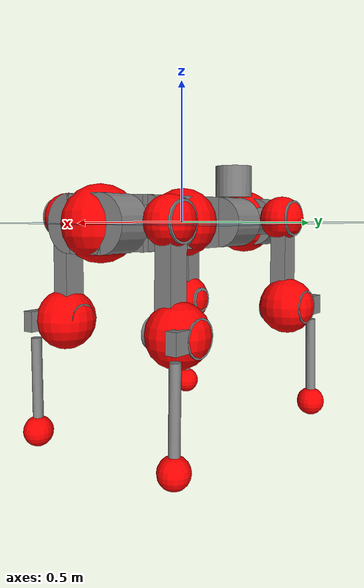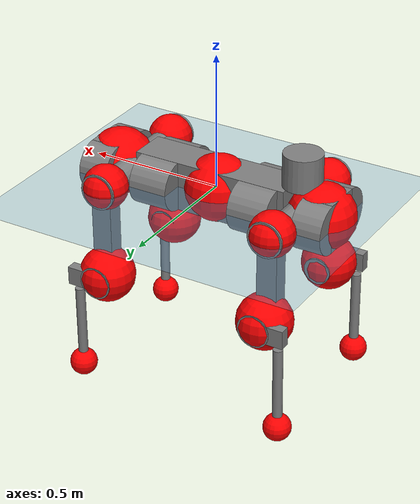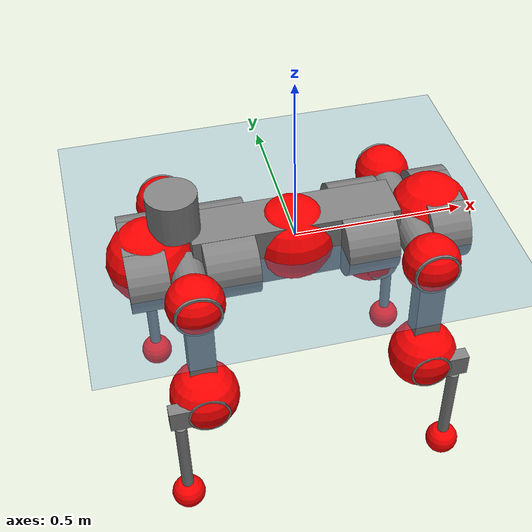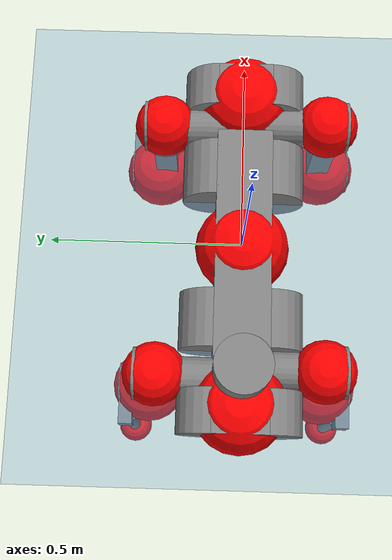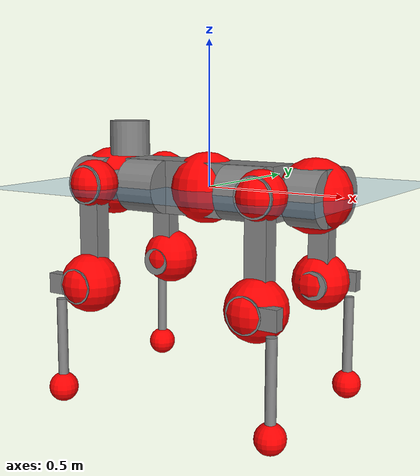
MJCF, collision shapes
<mujoco model="anymal_c">
  <compiler angle="radian" assetdir="assets" balanceinertia="true" inertiafromgeom="false"/>

  <option timestep="0.005" density="1.2" viscosity="2e-05"/>

  <size nkey="1"/>

  <visual>
    <quality shadowsize="8192"/>
    <map shadowclip="0.5"/>
  </visual>

  <default>
    <default class="/">
      <material specular="0" shininess="0.25"/>
      <geom contype="0" conaffinity="0" group="1" solref="-1000 -80"/>
      <site size="0.01 0.005 0.005" group="5"/>
      <general forcelimited="true" forcerange="-80 80" biastype="affine" gainprm="80" biasprm="0 -80 -2"/>
      <default class="anymal_c">
        <joint armature="0.01" damping="0.01" frictionloss="0.1"/>
        <default class="visual">
          <geom type="mesh" group="2"/>
          <default class="visual_zflip"/>
        </default>
        <default class="collision">
          <geom type="cylinder" group="3"/>
          <default class="foot">
            <geom size="0.03 0 0" type="sphere" condim="6" priority="1" friction="0.8 0.02 0.01" solimp="0.015 1 0.03"/>
          </default>
        </default>
      </default>
      <default class="reward_collision_sphere">
        <geom group="5" rgba="1 0 0 1"/>
      </default>
    </default>
  </default>

  <asset>
    <texture type="skybox" colorspace="auto" name="//unnamed_texture_0" builtin="gradient" rgb1="0.95 0.95 0.95" rgb2="0.95 0.95 0.95" width="100" height="600"/>
    <texture type="2d" colorspace="auto" name="texplane" builtin="checker" rgb1="0.345 0.575 0.748" rgb2="0.345 0.575 0.748" markrgb="1 1 1" width="512" height="512"/>
    <texture type="2d" colorspace="linear" name="base" file="base.png"/>
    <texture type="2d" colorspace="linear" name="top_shell" file="top_shell.png"/>
    <texture type="2d" colorspace="linear" name="bottom_shell" file="bottom_shell.png"/>
    <texture type="2d" colorspace="linear" name="remote" file="remote.png"/>
    <texture type="2d" colorspace="linear" name="hatch" file="hatch.png"/>
    <texture type="2d" colorspace="linear" name="handle" file="handle.png"/>
    <texture type="2d" colorspace="linear" name="face" file="face.png"/>
    <texture type="2d" colorspace="linear" name="battery" file="battery.png"/>
    <texture type="2d" colorspace="linear" name="lidar_cage" file="lidar_cage.png"/>
    <texture type="2d" colorspace="linear" name="depth_camera" file="depth_camera.png"/>
    <texture type="2d" colorspace="linear" name="wide_angle_camera" file="wide_angle_camera.png"/>
    <texture type="2d" colorspace="linear" name="lidar" file="lidar.png"/>
    <texture type="2d" colorspace="linear" name="drive" file="drive.png"/>
    <texture type="2d" colorspace="linear" name="hip_l" file="hip_l.png"/>
    <texture type="2d" colorspace="linear" name="shank_l" file="shank_l.png"/>
    <texture type="2d" colorspace="linear" name="foot" file="foot.png"/>
    <texture type="2d" colorspace="linear" name="thigh" file="thigh.png"/>
    <texture type="2d" colorspace="linear" name="shank_r" file="shank_r.png"/>
    <texture type="2d" colorspace="linear" name="hip_r" file="hip_r.png"/>
    <material name="MatPlane" class="/" texture="texplane" texuniform="true" texrepeat="2 2" specular="0.9" shininess="0.5"/>
    <material name="black_plastic" class="/" rgba="0.007 0.007 0.007 1"/>
    <material name="green" class="/" rgba="0.052 0.178 0.033 1"/>
    <material name="red" class="/" rgba="0.178 0.006 0.005 1"/>
    <material name="yellow" class="/" rgba="0.178 0.119 0.006 1"/>
    <material name="lwl" class="/" rgba="0.8 0.8 0.8 1"/>
    <material name="base" class="/" texture="base"/>
    <material name="top_shell" class="/" texture="top_shell"/>
    <material name="bottom_shell" class="/" texture="bottom_shell"/>
    <material name="hip_l" class="/" texture="hip_l"/>
    <material name="thigh" class="/" texture="thigh"/>
    <material name="shank_l" class="/" texture="shank_l"/>
    <material name="foot" class="/" texture="foot"/>
    <material name="hip_r" class="/" texture="hip_r"/>
    <material name="shank" class="/" texture="shank_r"/>
    <material name="hatch" class="/" texture="hatch"/>
    <material name="remote" class="/" texture="remote"/>
    <material name="handle" class="/" texture="handle"/>
    <material name="face" class="/" texture="face"/>
    <material name="depth_camera" class="/" texture="depth_camera"/>
    <material name="wide_angle_camera" class="/" texture="wide_angle_camera"/>
    <material name="battery" class="/" texture="battery"/>
    <material name="lidar_cage" class="/" texture="lidar_cage"/>
    <material name="lidar" class="/" texture="lidar"/>
    <material name="drive" class="/" texture="drive"/>
    <mesh name="base_0" class="/" file="base_0.obj"/>
    <mesh name="base_1" class="/" file="base_1.obj"/>
    <mesh name="base_2" class="/" file="base_2.obj"/>
    <mesh name="base_3" class="/" file="base_3.obj"/>
    <mesh name="base_4" class="/" file="base_4.obj"/>
    <mesh name="base_5" class="/" file="base_5.obj"/>
    <mesh name="top_shell" class="/" file="top_shell.obj"/>
    <mesh name="bottom_shell" class="/" file="bottom_shell.obj"/>
    <mesh name="remote" class="/" file="remote.obj"/>
    <mesh name="handle" class="/" file="handle.obj"/>
    <mesh name="face" class="/" file="face.obj"/>
    <mesh name="wide_angle_camera" class="/" file="wide_angle_camera.obj"/>
    <mesh name="depth_camera" class="/" file="depth_camera.obj"/>
    <mesh name="battery" class="/" file="battery.obj"/>
    <mesh name="lidar_cage" class="/" file="lidar_cage.obj"/>
    <mesh name="lidar" class="/" file="lidar.obj"/>
    <mesh name="drive" class="/" file="drive.obj"/>
    <mesh name="hip_l" class="/" file="hip_l.obj"/>
    <mesh name="thigh" class="/" file="thigh.obj"/>
    <mesh name="shank_l" class="/" file="shank_l.obj"/>
    <mesh name="foot" class="/" file="foot.obj"/>
    <mesh name="hip_r" class="/" file="hip_r.obj"/>
    <mesh name="hatch" class="/" file="hatch.obj"/>
    <mesh name="shank_r" class="/" file="shank_r.obj"/>
  </asset>

  <worldbody>
    <geom name="floor" class="/" size="100 100 0.125" type="plane" group="0" material="MatPlane"/>
    <light name="toplight_shadow" class="/" pos="0 0 5" dir="0.0990148 0.0990148 -0.990148" type="directional" ambient="0.04 0.04 0.04" diffuse="0.55 0.55 0.55" specular="0.12 0.12 0.12"/>
    <light name="toplight_fill" class="/" pos="0 0 5" dir="0.0990148 0.0990148 -0.990148" type="directional" castshadow="false" ambient="0.04 0.04 0.04" diffuse="0.3 0.3 0.3" specular="0.08 0.08 0.08"/>
    <body name="trunk" childclass="anymal_c" pos="-0.00871687 -0.00217857 -0.00163347" quat="1 0.000115098 -2.18662e-06 -9.59306e-05">
      <inertial pos="0.00150966 -0.00214916 0.057456" quat="0.508429 0.510054 0.486515 0.494618" mass="21.0856" diaginertia="0.32906 0.446684 0.525962"/>
      <joint name="//unnamed_joint_0" type="free" armature="0" damping="0" frictionloss="0"/>
      <geom name="//unnamed_geom_1" class="visual" material="green" mesh="base_0"/>
      <geom name="//unnamed_geom_2" class="visual" material="yellow" mesh="base_1"/>
      <geom name="//unnamed_geom_3" class="visual" material="red" mesh="base_2"/>
      <geom name="//unnamed_geom_4" class="visual" material="black_plastic" mesh="base_3"/>
      <geom name="//unnamed_geom_5" class="visual" material="lwl" mesh="base_4"/>
      <geom name="//unnamed_geom_6" class="visual" material="base" mesh="base_5"/>
      <geom name="trunk_1" class="collision" size="0.297733 0.0718666 0.0923999" type="box"/>
      <geom name="trunk_2" class="collision" size="0.0923999 0.0744333" pos="0.198901 0.0676857 0" quat="0.707107 0 0.707107 0"/>
      <geom name="trunk_3" class="collision" size="0.0923999 0.0744333" pos="-0.198901 0.0676857 0" quat="0.707107 0 0.707107 0"/>
      <geom name="trunk_4" class="collision" size="0.0923999 0.0744333" pos="0.198901 -0.0676857 0" quat="0.707107 0 0.707107 0"/>
      <geom name="trunk_5" class="collision" size="0.0923999 0.0744333" pos="-0.198901 -0.0676857 0" quat="0.707107 0 0.707107 0"/>
      <geom name="//unnamed_geom_12" class="visual" material="top_shell" mesh="top_shell"/>
      <geom name="//unnamed_geom_13" class="visual" material="bottom_shell" mesh="bottom_shell"/>
      <geom name="//unnamed_geom_14" class="visual" material="remote" mesh="remote"/>
      <geom name="//unnamed_geom_15" class="visual" material="handle" mesh="handle"/>
      <geom name="//unnamed_geom_16" class="visual" pos="0.379056 0 0" quat="1 0 0 0" material="face" mesh="face"/>
      <geom name="trunk_6" class="collision" size="0.0564666 0.0718666 0.0923999" pos="0.429353 0 0" type="box"/>
      <geom name="//unnamed_geom_18" class="collision" size="0.0923999 0.0564666" pos="0.429353 0.0676857 0" quat="0.707107 0 0.707107 0"/>
      <geom name="//unnamed_geom_19" class="collision" size="0.0923999 0.0564666" pos="0.429353 -0.0676857 0" quat="0.707107 0 0.707107 0"/>
      <geom name="//unnamed_geom_20" class="visual" pos="0.422186 0 -0.0371573" quat="0.965926 0 0.258819 0" material="depth_camera" mesh="depth_camera"/>
      <geom name="//unnamed_geom_21" class="visual" pos="0.469133 0 0.0179426" material="wide_angle_camera" mesh="wide_angle_camera"/>
      <geom name="//unnamed_geom_22" class="visual_zflip" pos="-0.379056 0 0" quat="0 0 0 1" material="face" mesh="face"/>
      <geom name="trunk_7" class="collision" size="0.0564666 0.0718666 0.0923999" pos="-0.429353 0 0" quat="0 0 0 1" type="box"/>
      <geom name="//unnamed_geom_24" class="collision" size="0.0923999 0.0564666" pos="-0.429353 -0.0676857 0" quat="0 -0.707107 0 0.707107"/>
      <geom name="//unnamed_geom_25" class="collision" size="0.0923999 0.0564666" pos="-0.429353 0.0676857 0" quat="0 -0.707107 0 0.707107"/>
      <geom name="//unnamed_geom_26" class="visual" pos="-0.422186 0 -0.0371573" quat="0 -0.258819 0 0.965926" material="depth_camera" mesh="depth_camera"/>
      <geom name="//unnamed_geom_27" class="visual_zflip" pos="-0.469133 0 0.0179426" quat="0 0 0 1" material="wide_angle_camera" mesh="wide_angle_camera"/>
      <geom name="//unnamed_geom_28" class="visual" material="battery" mesh="battery"/>
      <geom name="//unnamed_geom_29" class="visual" pos="0 0.0746321 0.0326594" quat="0.683013 -0.183013 0.183013 0.683013" material="depth_camera" mesh="depth_camera"/>
      <geom name="//unnamed_geom_30" class="visual" pos="0 -0.0746321 0.0326594" quat="0.683013 0.183013 0.183013 -0.683013" material="depth_camera" mesh="depth_camera"/>
      <geom name="//unnamed_geom_31" class="visual" pos="-0.332874 0 0.0880949" quat="1 0 0 0" material="lidar_cage" mesh="lidar_cage"/>
      <geom name="trunk_8" class="collision" size="0.0718666 0.0615999" pos="-0.332874 0 0.160009"/>
      <geom name="//unnamed_geom_33" class="visual" pos="-0.332874 2.06057e-05 0.170437" quat="0.707107 0 0 -0.707107" material="lidar" mesh="lidar"/>
      <geom name="//unnamed_geom_34" class="visual" pos="0.274255 0.100644 -3.99568e-09" quat="0.258819 0.965926 0 0" material="drive" mesh="drive"/>
      <geom name="//unnamed_geom_35" class="visual" pos="0.274255 -0.100644 3.99568e-09" quat="0.258819 -0.965926 0 0" material="drive" mesh="drive"/>
      <geom name="//unnamed_geom_36" class="visual" pos="-0.274255 0.100644 3.99568e-09" quat="0 0 0.965926 -0.258819" material="drive" mesh="drive"/>
      <geom name="//unnamed_geom_37" class="visual" pos="-0.274255 -0.100644 -3.99568e-09" quat="0 0 -0.965926 -0.258819" material="drive" mesh="drive"/>
      <geom name="//unnamed_geom_38" class="visual" pos="0.106081 0 0.0874956" quat="1 0 0 0" material="hatch" mesh="hatch"/>
      <geom name="//unnamed_geom_39" class="reward_collision_sphere" size="0.1232"/>
      <geom name="//unnamed_geom_40" class="reward_collision_sphere" size="0.1232" pos="0.41152 0 0"/>
      <geom name="//unnamed_geom_41" class="reward_collision_sphere" size="0.1232" pos="-0.41152 0 0"/>
      <site name="imu" pos="0.223988 0.00310856 0.106524" size="0.0102667"/>
      <camera name="track" pos="0 -1.93388 0" quat="0.707107 0.707107 0 0" mode="trackcom"/>
      <camera name="ego_camera" pos="0.41152 0 -0.0479428" quat="-0.5 -0.5 0.5 0.5"/>
      <body name="LF_HIP" pos="0.276623 0.103715 0.00427357" quat="0.261789 0.965122 0.00212698 0.00120038">
        <inertial pos="0.0614599 -0.0123794 -0.0110693" quat="-0.125107 0.712295 -0.132601 0.677791" mass="2.94081" diaginertia="0.00365608 0.0043782 0.00784152"/>
        <joint name="LF_HAA" pos="0 0 0" axis="0.998331 0.0553103 -0.0165982" stiffness="0.0437557" range="-0.752735 0.499711" armature="0.0152353" damping="0.0110109" frictionloss="0.0853594"/>
        <geom name="//unnamed_geom_42" class="visual" pos="0 -0.000235048 3.86064e-05" quat="0.258819 -0.965926 0 0" material="hip_l" mesh="hip_l"/>
        <geom name="//unnamed_geom_43" class="visual" pos="0.0547779 -0.0671479 -0.0404811" quat="0.183013 -0.683013 0.683013 0.183013" material="drive" mesh="drive"/>
        <geom name="//unnamed_geom_44" class="collision" size="0.0513333 0.0718666" pos="0.0547779 -0.0115644 -0.00827613" quat="-0.353553 -0.612372 0.612372 -0.353553"/>
        <body name="LF_THIGH" pos="0.0599699 -0.0722903 -0.0459515" quat="0.181877 -0.683305 0.683204 0.182338">
          <inertial pos="0.0268462 -0.000288998 -0.283756" quat="0.992864 0.00895932 -0.0868735 0.0811963" mass="3.46145" diaginertia="0.0201539 0.0257885 0.0103247"/>
          <joint name="LF_HFE" pos="0 0 0" axis="0.99982 0.0187128 0.00310458" stiffness="0.0243115" range="-3.19271 3.14257" armature="0.00597657" damping="0.0275549" frictionloss="0.125194"/>
          <geom name="//unnamed_geom_45" class="visual" pos="-0.00104352 -1.64435e-06 0" quat="0.707107 0 0 -0.707107" material="thigh" mesh="thigh"/>
          <geom name="//unnamed_geom_46" class="collision" size="0.0667333 0.0410666" pos="0.0365796 0 0" quat="0.5 0.5 -0.5 -0.5"/>
          <geom name="//unnamed_geom_47" class="collision" size="0.0385 0.0308 0.145082" pos="0.0274347 0 -0.169375" quat="0.707107 0 0 -0.707107" type="box"/>
          <geom name="//unnamed_geom_48" class="visual" pos="0.0917233 0 -0.341592" quat="1 0 0 0" material="drive" mesh="drive"/>
          <geom name="//unnamed_geom_49" class="collision" size="0.0513333 0.0718666" pos="0.027709 0 -0.341592" quat="0.707107 0 0.707107 0"/>
          <geom name="//unnamed_geom_50" class="reward_collision_sphere" size="0.0821333" pos="0.0228622 0 0"/>
          <body name="LF_SHANK" pos="0.0941054 0.011057 -0.340997" quat="0.999995 -0.000503987 0.00221078 -0.00204758">
            <inertial pos="0.0017584 -0.0590419 -0.0970701" quat="0.990982 -0.112267 -0.00739101 -0.0727812" mass="0.563449" diaginertia="0.00662668 0.00743245 0.0028608"/>
            <joint name="LF_KFE" pos="0 0 0" axis="0.99997 -0.00365634 0.0068997" stiffness="0.00265334" range="-3.1153 3.12402" armature="0.0105654" damping="0.0360899" frictionloss="0.109999"/>
            <geom name="//unnamed_geom_51" class="visual" pos="-0.00034027 -0.00181434 0" quat="0.707107 0 0 -0.707107" material="shank_l" mesh="shank_l"/>
            <geom name="LF_kfe_act" class="collision" size="0.0615999 0.0205333" pos="0.0182898 0 0" quat="0.5 0.5 -0.5 -0.5"/>
            <geom name="//unnamed_geom_53" class="collision" size="0.0590322 0.03465 0.0195066" pos="0.0182898 -0.055598 0" quat="0.5 0.5 -0.5 -0.5" type="box"/>
            <geom name="//unnamed_geom_54" class="visual" pos="0.0119342 -0.0856269 -0.405081" quat="0.382683 0 0 -0.92388" material="foot" mesh="foot"/>
            <geom name="LF_calf" class="collision" size="0.0179666 0.145019" pos="0.0119341 -0.0850422 -0.20254" quat="0.707107 0 0 -0.707107"/>
            <geom name="LF_foot" class="foot" size="0.0240473" pos="0.0119341 -0.0850422 -0.378113" quat="0.707107 0 0 -0.707107"/>
            <geom name="//unnamed_geom_57" class="reward_collision_sphere" size="0.102667" pos="-0.0457245 0 0"/>
            <geom name="//unnamed_geom_58" class="reward_collision_sphere" size="0.0513333" pos="0.0119341 -0.0850422 -0.378113"/>
            <site name="LF_foot" class="foot" pos="0.0119341 -0.0850422 -0.378113" quat="0.707107 0 0 -0.707107" size="0.0102667"/>
          </body>
        </body>
      </body>
      <body name="RF_HIP" pos="0.285105 -0.110984 0.00745962" quat="0.258267 -0.966073 4.48074e-05 0.00113368">
        <inertial pos="0.0414484 0.014198 -0.00070104" quat="0.139794 0.66383 0.11768 0.725216" mass="2.66546" diaginertia="0.00321148 0.00388835 0.00716211"/>
        <joint name="RF_HAA" pos="0 0 0" axis="0.999103 0.0279233 -0.0318418" range="-0.30097 0.743085" armature="0.01089" damping="0.0169038" frictionloss="0.142596"/>
        <geom name="//unnamed_geom_59" class="visual" pos="0 0.000235046 3.86063e-05" quat="0.258819 0.965926 0 0" material="hip_r" mesh="hip_r"/>
        <geom name="//unnamed_geom_60" class="visual" pos="0.0547779 0.0671479 -0.0404811" quat="0.183013 0.683013 0.683013 -0.183013" material="drive" mesh="drive"/>
        <geom name="//unnamed_geom_61" class="collision" size="0.0513333 0.0718666" pos="0.0547779 0.0115644 -0.00827613" quat="-0.353553 0.612372 0.612372 0.353553"/>
        <body name="RF_THIGH" pos="0.0553428 0.0712879 -0.0547642" quat="0.18234 0.683333 0.682923 -0.182823">
          <inertial pos="0.0318555 -0.0115745 -0.295145" quat="0.992773 -0.00512439 -0.0806757 0.088695" mass="3.25303" diaginertia="0.0190684 0.025035 0.0102232"/>
          <joint name="RF_HFE" pos="0 0 0" axis="0.999659 -0.00169102 0.0260501" range="-3.16465 3.06938" armature="0.0107222" damping="0.0383317" frictionloss="0.104362"/>
          <geom name="//unnamed_geom_62" class="visual" pos="-0.00104352 -1.64435e-06 0" quat="0.707107 0 0 -0.707107" material="thigh" mesh="thigh"/>
          <geom name="//unnamed_geom_63" class="collision" size="0.0667333 0.0410666" pos="0.0365796 0 0" quat="0.5 0.5 0.5 0.5"/>
          <geom name="//unnamed_geom_64" class="collision" size="0.0385 0.0308 0.145082" pos="0.0274347 0 -0.169375" quat="0.707107 0 0 0.707107" type="box"/>
          <geom name="//unnamed_geom_65" class="visual" pos="0.0917233 0 -0.341592" quat="1 0 0 0" material="drive" mesh="drive"/>
          <geom name="//unnamed_geom_66" class="collision" size="0.0513333 0.0718666" pos="0.027709 0 -0.341592" quat="0.707107 0 0.707107 0"/>
          <geom name="//unnamed_geom_67" class="reward_collision_sphere" size="0.0821333" pos="0.0228622 0 0"/>
          <body name="RF_SHANK" pos="0.0875388 -0.000833042 -0.349567" quat="0.999986 -0.00297964 0.00426849 0.000907438">
            <inertial pos="-0.00673894 0.0645561 -0.104427" quat="0.992847 0.117054 -9.37459e-05 0.0235382" mass="0.691879" diaginertia="0.006141 0.00694234 0.00237734"/>
            <joint name="RF_KFE" pos="0 0 0" axis="0.999986 -0.00434133 -0.00300781" range="-2.9451 3.10519" armature="0.0108112" damping="0" frictionloss="0.0590915"/>
            <geom name="//unnamed_geom_68" class="visual" pos="-0.000340268 0.00181433 0" quat="0.707107 0 0 0.707107" material="shank" mesh="shank_r"/>
            <geom name="RF_kfe_act" class="collision" size="0.0615999 0.0205333" pos="0.0182898 0 0" quat="0.5 0.5 0.5 0.5"/>
            <geom name="//unnamed_geom_70" class="collision" size="0.0590322 0.03465 0.0195066" pos="0.0182898 0.055598 0" quat="0.5 0.5 0.5 0.5" type="box"/>
            <geom name="//unnamed_geom_71" class="visual" pos="0.011934 0.0856269 -0.405081" quat="0.382683 0 0 0.92388" material="foot" mesh="foot"/>
            <geom name="RF_calf" class="collision" size="0.0179666 0.145019" pos="0.0119341 0.0850422 -0.20254" quat="0.707107 0 0 0.707107"/>
            <geom name="RF_foot" class="foot" size="0.0312962" pos="0.0119341 0.0850422 -0.378113" quat="0.707107 0 0 0.707107"/>
            <geom name="//unnamed_geom_74" class="reward_collision_sphere" size="0.102667" pos="-0.0457245 0 0"/>
            <geom name="//unnamed_geom_75" class="reward_collision_sphere" size="0.0513333" pos="0.0119341 0.0850422 -0.378113"/>
            <site name="RF_foot" class="foot" pos="0.0119341 0.0850422 -0.378113" quat="0.707107 0 0 0.707107" size="0.0102667"/>
          </body>
        </body>
      </body>
      <body name="LH_HIP" pos="-0.286209 0.109007 0.00216295" quat="0.000202391 0.000550379 0.965894 -0.258936">
        <inertial pos="0.0420593 0.0261871 -0.00920246" quat="0.160354 0.699254 0.131471 0.684138" mass="3.09613" diaginertia="0.00372987 0.00410872 0.0088515"/>
        <joint name="LH_HAA" pos="0 0 0" axis="0.999901 0.0126824 -0.00612368" range="-0.607494 0.678325" armature="0.010519" damping="0.00680143" frictionloss="0.11098"/>
        <geom name="//unnamed_geom_76" class="visual" pos="0 0.000235046 3.86063e-05" quat="-0.258819 -0.965926 0 0" material="hip_r" mesh="hip_r"/>
        <geom name="//unnamed_geom_77" class="visual" pos="0.0547779 0.0671479 -0.0404811" quat="0.183013 0.683013 0.683013 -0.183013" material="drive" mesh="drive"/>
        <geom name="//unnamed_geom_78" class="collision" size="0.0513333 0.0718666" pos="0.0547779 0.0115644 -0.00827613" quat="-0.353553 0.612372 0.612372 0.353553"/>
        <body name="LH_THIGH" pos="0.0505682 0.067646 -0.0530256" quat="0.182622 0.683664 0.682492 -0.182912">
          <inertial pos="0.0282553 -0.0101485 -0.292548" quat="0.989913 0.000678266 -0.114086 0.0839985" mass="3.06778" diaginertia="0.0191027 0.0238036 0.0108698"/>
          <joint name="LH_HFE" pos="0 0 0" axis="0.998953 0.0313848 0.0332966" stiffness="0.0308329" range="-3.25699 3.0383" armature="0.00555257" damping="0.00115844" frictionloss="0.062274"/>
          <geom name="//unnamed_geom_79" class="visual" pos="-0.00104352 -1.64435e-06 0" quat="0.707107 0 0 -0.707107" material="thigh" mesh="thigh"/>
          <geom name="//unnamed_geom_80" class="collision" size="0.0667333 0.0410666" pos="0.0365796 0 0" quat="0.5 0.5 -0.5 -0.5"/>
          <geom name="//unnamed_geom_81" class="collision" size="0.0385 0.0308 0.145082" pos="0.0274347 0 -0.169375" quat="0.707107 0 0 -0.707107" type="box"/>
          <geom name="//unnamed_geom_82" class="visual" pos="0.0917233 0 -0.341592" quat="1 0 0 0" material="drive" mesh="drive"/>
          <geom name="//unnamed_geom_83" class="collision" size="0.0513333 0.0718666" pos="0.027709 0 -0.341592" quat="0.707107 0 0.707107 0"/>
          <geom name="//unnamed_geom_84" class="reward_collision_sphere" size="0.0821333" pos="0.0228622 0 0"/>
          <body name="LH_SHANK" pos="0.0966966 -0.00771923 -0.330529" quat="0.999985 0.00487225 -0.00160535 -0.00204475">
            <inertial pos="0.00640892 0.0590517 -0.108526" quat="0.993183 0.111629 0.0184394 0.0280369" mass="0.719517" diaginertia="0.00645111 0.00821359 0.0028689"/>
            <joint name="LH_KFE" pos="0 0 0" axis="0.999937 0.00764689 -0.00817725" stiffness="0.0148398" range="-3.14784 3.24298" armature="0.0100922" damping="0.0185023" frictionloss="0.138593"/>
            <geom name="//unnamed_geom_85" class="visual" pos="-0.000340268 0.00181433 0" quat="-0.707107 0 0 -0.707107" material="shank" mesh="shank_r"/>
            <geom name="LH_kfe_act" class="collision" size="0.0615999 0.0205333" pos="0.0182898 0 0" quat="0.5 0.5 -0.5 -0.5"/>
            <geom name="//unnamed_geom_87" class="collision" size="0.0590322 0.03465 0.0195066" pos="0.0182898 0.055598 0" quat="0.5 0.5 -0.5 -0.5" type="box"/>
            <geom name="//unnamed_geom_88" class="visual" pos="0.011934 0.0856269 -0.405081" quat="-0.382683 0 0 -0.92388" material="foot" mesh="foot"/>
            <geom name="LH_calf" class="collision" size="0.0179666 0.145019" pos="0.0119341 0.0850422 -0.20254" quat="0.707107 0 0 -0.707107"/>
            <geom name="LH_foot" class="foot" size="0.0393162" pos="0.0119341 0.0850422 -0.378113" quat="0.707107 0 0 -0.707107"/>
            <geom name="//unnamed_geom_91" class="reward_collision_sphere" size="0.102667" pos="-0.0457245 0 0"/>
            <geom name="//unnamed_geom_92" class="reward_collision_sphere" size="0.0513333" pos="0.0119341 0.0850422 -0.378113"/>
            <site name="LH_foot" class="foot" pos="0.0119341 0.0850422 -0.378113" quat="0.707107 0 0 -0.707107" size="0.0102667"/>
          </body>
        </body>
      </body>
      <body name="RH_HIP" pos="-0.264349 -0.103217 -0.00144239" quat="0.000504335 -0.000659959 -0.96601 -0.258504">
        <inertial pos="0.0455216 -0.0186826 -0.00980487" quat="-0.110837 0.695052 -0.0976287 0.703623" mass="2.97095" diaginertia="0.00351878 0.00385637 0.00758721"/>
        <joint name="RH_HAA" pos="0 0 0" axis="0.998636 -0.00820129 0.051561" range="-0.727604 0.463381" armature="0.0114412" damping="0" frictionloss="0.111263"/>
        <geom name="//unnamed_geom_93" class="visual" pos="0 -0.000235048 3.86064e-05" quat="-0.258819 0.965926 0 0" material="hip_l" mesh="hip_l"/>
        <geom name="//unnamed_geom_94" class="visual" pos="0.0547779 -0.0671479 -0.0404811" quat="-0.183013 0.683013 -0.683013 -0.183013" material="drive" mesh="drive"/>
        <geom name="//unnamed_geom_95" class="collision" size="0.0513333 0.0718666" pos="0.0547779 -0.0115644 -0.00827613" quat="0.353553 0.612372 -0.612372 0.353553"/>
        <body name="RH_THIGH" pos="0.0562495 -0.069742 -0.0588969" quat="-0.182066 0.683189 -0.683032 -0.183227">
          <inertial pos="0.0277785 -0.00192292 -0.295531" quat="0.990272 0.00839342 -0.127058 0.0561079" mass="3.39598" diaginertia="0.0192546 0.0232495 0.00904164"/>
          <joint name="RH_HFE" pos="0 0 0" axis="0.999993 0.00111845 -0.00344273" stiffness="0.0305083" range="-3.10987 3.10631" armature="0.00663871" damping="0.0479639" frictionloss="0.120652"/>
          <geom name="//unnamed_geom_96" class="visual" pos="-0.00104352 -1.64435e-06 0" quat="0.707107 0 0 -0.707107" material="thigh" mesh="thigh"/>
          <geom name="//unnamed_geom_97" class="collision" size="0.0667333 0.0410666" pos="0.0365796 0 0" quat="0.5 0.5 0.5 0.5"/>
          <geom name="//unnamed_geom_98" class="collision" size="0.0385 0.0308 0.145082" pos="0.0274347 0 -0.169375" quat="0.707107 0 0 0.707107" type="box"/>
          <geom name="//unnamed_geom_99" class="visual" pos="0.0917233 0 -0.341592" quat="1 0 0 0" material="drive" mesh="drive"/>
          <geom name="//unnamed_geom_100" class="collision" size="0.0513333 0.0718666" pos="0.027709 0 -0.341592" quat="0.707107 0 0.707107 0"/>
          <geom name="//unnamed_geom_101" class="reward_collision_sphere" size="0.0821333" pos="0.0228622 0 0"/>
          <body name="RH_SHANK" pos="0.0942035 -0.0024184 -0.343394" quat="1 -0.000201169 0.000364173 3.05431e-06">
            <inertial pos="0.0135503 -0.0486124 -0.106447" quat="0.993239 -0.111986 -0.0073203 -0.0296957" mass="0.563794" diaginertia="0.00682756 0.00688467 0.00273051"/>
            <joint name="RH_KFE" pos="0 0 0" axis="0.999973 0.00693219 -0.0023536" range="-3.10225 2.94388" armature="0.0101027" damping="0.00212587" frictionloss="0.0511214"/>
            <geom name="//unnamed_geom_102" class="visual" pos="-0.00034027 -0.00181434 0" quat="0.707107 0 0 -0.707107" material="shank_l" mesh="shank_l"/>
            <geom name="RH_kfe_act" class="collision" size="0.0615999 0.0205333" pos="0.0182898 0 0" quat="0.5 0.5 0.5 0.5"/>
            <geom name="//unnamed_geom_104" class="collision" size="0.0590322 0.03465 0.0195066" pos="0.0182898 -0.055598 0" quat="0.5 0.5 0.5 0.5" type="box"/>
            <geom name="//unnamed_geom_105" class="visual" pos="0.0119342 -0.0856269 -0.405081" quat="0.382683 0 0 -0.92388" material="foot" mesh="foot"/>
            <geom name="RH_calf" class="collision" size="0.0179666 0.145019" pos="0.0119341 -0.0850422 -0.20254" quat="0.707107 0 0 0.707107"/>
            <geom name="RH_foot" class="foot" size="0.0198133" pos="0.0119341 -0.0850422 -0.378113" quat="0.707107 0 0 0.707107"/>
            <geom name="//unnamed_geom_108" class="reward_collision_sphere" size="0.102667" pos="-0.0457245 0 0"/>
            <geom name="//unnamed_geom_109" class="reward_collision_sphere" size="0.0513333" pos="0.0119341 -0.0850422 -0.378113"/>
            <site name="RH_foot" class="foot" pos="0.0119341 -0.0850422 -0.378113" quat="0.707107 0 0 0.707107" size="0.0102667"/>
          </body>
        </body>
      </body>
    </body>
  </worldbody>

  <contact>
    <pair class="/" geom1="floor" geom2="LF_foot" name="//unnamed_contact_0"/>
    <pair class="/" geom1="floor" geom2="RF_foot" name="//unnamed_contact_1"/>
    <pair class="/" geom1="floor" geom2="LH_foot" name="//unnamed_contact_2"/>
    <pair class="/" geom1="floor" geom2="RH_foot" name="//unnamed_contact_3"/>
  </contact>

  <actuator>
    <general name="LF_HAA" class="/" joint="LF_HAA" forcerange="-82.0298 82.0298" gainprm="79.8607" biasprm="0 -79.8607 -2.00289"/>
    <general name="LF_HFE" class="/" joint="LF_HFE" forcerange="-106.259 106.259" gainprm="79.8607" biasprm="0 -79.8607 -2.00289"/>
    <general name="LF_KFE" class="/" joint="LF_KFE" forcerange="-74.0961 74.0961" gainprm="79.8607" biasprm="0 -79.8607 -2.00289"/>
    <general name="RF_HAA" class="/" joint="RF_HAA" forcerange="-86.4982 86.4982" gainprm="79.8607" biasprm="0 -79.8607 -2.00289"/>
    <general name="RF_HFE" class="/" joint="RF_HFE" forcerange="-86.8081 86.8081" gainprm="79.8607" biasprm="0 -79.8607 -2.00289"/>
    <general name="RF_KFE" class="/" joint="RF_KFE" forcerange="-67.9075 67.9075" gainprm="79.8607" biasprm="0 -79.8607 -2.00289"/>
    <general name="LH_HAA" class="/" joint="LH_HAA" forcerange="-83.6296 83.6296" gainprm="79.8607" biasprm="0 -79.8607 -2.00289"/>
    <general name="LH_HFE" class="/" joint="LH_HFE" forcerange="-66.8515 66.8515" gainprm="79.8607" biasprm="0 -79.8607 -2.00289"/>
    <general name="LH_KFE" class="/" joint="LH_KFE" forcerange="-95.2396 95.2396" gainprm="79.8607" biasprm="0 -79.8607 -2.00289"/>
    <general name="RH_HAA" class="/" joint="RH_HAA" forcerange="-78.0827 78.0827" gainprm="79.8607" biasprm="0 -79.8607 -2.00289"/>
    <general name="RH_HFE" class="/" joint="RH_HFE" forcerange="-78.8836 78.8836" gainprm="79.8607" biasprm="0 -79.8607 -2.00289"/>
    <general name="RH_KFE" class="/" joint="RH_KFE" forcerange="-116.209 116.209" gainprm="79.8607" biasprm="0 -79.8607 -2.00289"/>
  </actuator>

  <sensor>
    <gyro site="imu" name="imu_angular_velocity"/>
    <velocimeter site="imu" name="imu_linear_velocity"/>
    <framelinvel objtype="site" objname="LF_foot" name="LF_foot_global_linear_velocity"/>
    <framelinvel objtype="site" objname="RF_foot" name="RF_foot_global_linear_velocity"/>
    <framelinvel objtype="site" objname="LH_foot" name="LH_foot_global_linear_velocity"/>
    <framelinvel objtype="site" objname="RH_foot" name="RH_foot_global_linear_velocity"/>
  </sensor>

  <keyframe>
    <key name="home" qpos="0 0 0.55 1 0 0 0 0 0.4 -0.8 0 -0.4 0.8 0 -0.4 0.8 0 0.4 -0.8"/>
  </keyframe>
</mujoco>
